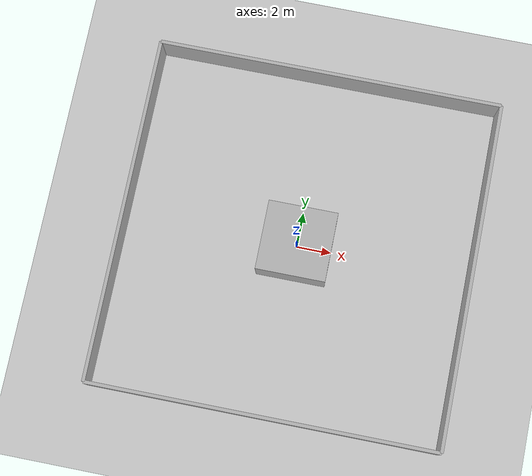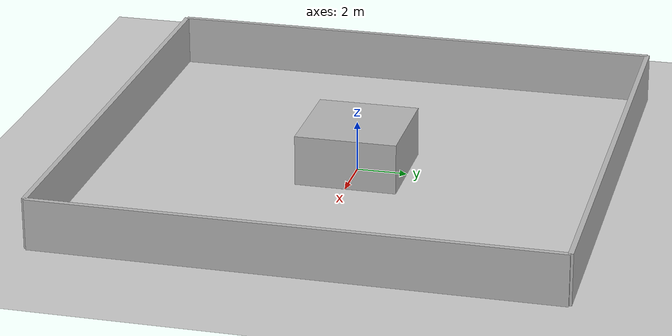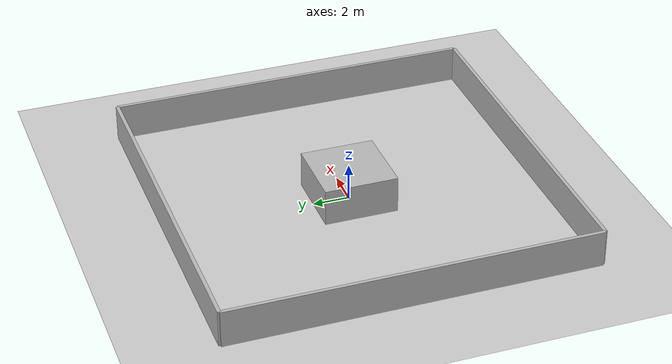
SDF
<?xml version="1.0" ?>
<sdf version="1.6">
  <world name="telos_warehouse_world">
    <include><uri>model://sun</uri></include>
    <include><uri>model://ground_plane</uri></include>

    <!-- 외벽 -->
    <model name="wall_north">
      <pose>0 10 1 0 0 0</pose>
      <link name="link">
        <collision name="collision"><geometry><box><size>20 0.2 2</size></box></geometry></collision>
        <visual name="visual"><geometry><box><size>20 0.2 2</size></box></geometry></visual>
      </link>
      <static>true</static>
    </model>
    <model name="wall_south">
      <pose>0 -10 1 0 0 0</pose>
      <link name="link">
        <collision name="collision"><geometry><box><size>20 0.2 2</size></box></geometry></collision>
        <visual name="visual"><geometry><box><size>20 0.2 2</size></box></geometry></visual>
      </link>
      <static>true</static>
    </model>
    <model name="wall_east">
      <pose>10 0 1 0 0 0</pose>
      <link name="link">
        <collision name="collision"><geometry><box><size>0.2 20 2</size></box></geometry></collision>
        <visual name="visual"><geometry><box><size>0.2 20 2</size></box></geometry></visual>
      </link>
      <static>true</static>
    </model>
    <model name="wall_west">
      <pose>-10 0 1 0 0 0</pose>
      <link name="link">
        <collision name="collision"><geometry><box><size>0.2 20 2</size></box></geometry></collision>
        <visual name="visual"><geometry><box><size>0.2 20 2</size></box></geometry></visual>
      </link>
      <static>true</static>
    </model>

    <!-- 내부 장애물 (교차로 및 병목 구간 형성) -->
    <model name="obstacle_center">
      <pose>0 0 1 0 0 0</pose>
      <link name="link">
        <collision name="collision"><geometry><box><size>4 4 2</size></box></geometry></collision>
        <visual name="visual"><geometry><box><size>4 4 2</size></box></geometry></visual>
      </link>
      <static>true</static>
    </model>
  </world>
</sdf>
